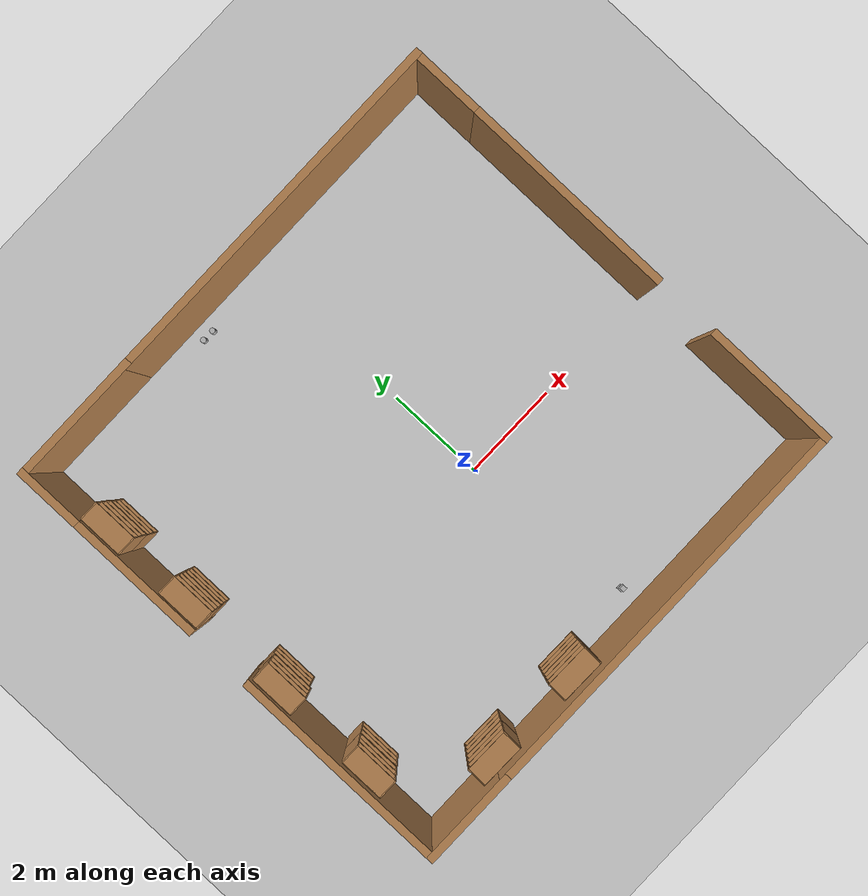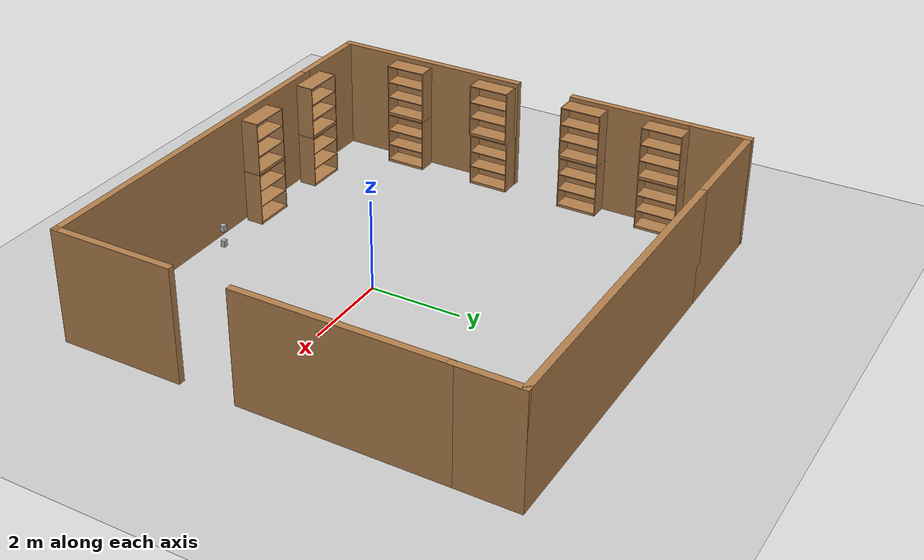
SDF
<sdf version="1.7">
 <world name="default">
  <model name="ground_plane">
   <static>1</static>
   <link name="link">
    <collision name="collision">
     <geometry><plane><normal>0 0 1</normal><size>100 100</size></plane></geometry>
     <surface><friction><ode><mu>100</mu><mu2>50</mu2></ode></friction></surface>
    </collision>
    <visual name="visual">
     <cast_shadows>0</cast_shadows>
     <geometry><plane><normal>0 0 1</normal><size>100 100</size></plane></geometry>
     <material>
      <script><uri>file://media/materials/scripts/gazebo.material</uri><name>Gazebo/Grey</name></script>
     </material>
    </visual>
   </link>
  </model>
  <model name="shopping_mart_box">
   <pose>-0.44063 0.87202 0 0 -0 0</pose>
   <link name="Wall_11">
    <collision name="Wall_11_Collision">
     <geometry><box><size>2 0.15 2.5</size></box></geometry>
     <pose>0 0 1.25 0 -0 0</pose>
    </collision>
    <visual name="Wall_11_Visual">
     <pose>0 0 1.25 0 -0 0</pose>
     <geometry><box><size>2 0.15 2.5</size></box></geometry>
     <material>
      <script><uri>file://media/materials/scripts/gazebo.material</uri><name>Gazebo/Wood</name></script>
      <ambient>1 1 1 1</ambient>
     </material>
    </visual>
    <pose>-4.05 -4.85 0 0 -0 3.14159</pose>
   </link>
   <link name="Wall_12">
    <collision name="Wall_12_Collision">
     <geometry><box><size>4.5 0.15 2.5</size></box></geometry>
     <pose>0 0 1.25 0 -0 0</pose>
    </collision>
    <visual name="Wall_12_Visual">
     <pose>0 0 1.25 0 -0 0</pose>
     <geometry><box><size>4.5 0.15 2.5</size></box></geometry>
     <material>
      <script><uri>file://media/materials/scripts/gazebo.material</uri><name>Gazebo/Wood</name></script>
      <ambient>1 1 1 1</ambient>
     </material>
    </visual>
    <pose>-4.975 -2.675 0 0 -0 1.5708</pose>
   </link>
   <link name="Wall_15">
    <collision name="Wall_15_Collision">
     <geometry><box><size>2.75 0.15 2.5</size></box></geometry>
     <pose>0 0 1.25 0 -0 0</pose>
    </collision>
    <visual name="Wall_15_Visual">
     <pose>0 0 1.25 0 -0 0</pose>
     <geometry><box><size>2.75 0.15 2.5</size></box></geometry>
     <material>
      <script><uri>file://media/materials/scripts/gazebo.material</uri><name>Gazebo/Wood</name></script>
      <ambient>1 1 1 1</ambient>
     </material>
    </visual>
    <pose>-4.975 2.2 0 0 0 -1.5708</pose>
   </link>
   <link name="Wall_17">
    <collision name="Wall_17_Collision">
     <geometry><box><size>1.5 0.15 2.5</size></box></geometry>
     <pose>0 0 1.25 0 -0 0</pose>
    </collision>
    <visual name="Wall_17_Visual">
     <pose>0 0 1.25 0 -0 0</pose>
     <geometry><box><size>1.5 0.15 2.5</size></box></geometry>
     <material>
      <script><uri>file://media/materials/scripts/gazebo.material</uri><name>Gazebo/Wood</name></script>
      <ambient>1 1 1 1</ambient>
     </material>
    </visual>
    <pose>-4.975 4.175 0 0 -0 1.5708</pose>
   </link>
   <link name="Wall_21">
    <collision name="Wall_21_Collision">
     <geometry><box><size>2.75 0.15 2.5</size></box></geometry>
     <pose>0 0 1.25 0 -0 0</pose>
    </collision>
    <visual name="Wall_21_Visual">
     <pose>0 0 1.25 0 -0 0</pose>
     <geometry><box><size>2.75 0.15 2.5</size></box></geometry>
     <material>
      <script><uri>file://media/materials/scripts/gazebo.material</uri><name>Gazebo/Wood</name></script>
      <ambient>1 1 1 1</ambient>
     </material>
    </visual>
    <pose>-3.675 4.85 0 0 -0 0</pose>
   </link>
   <link name="Wall_22">
    <collision name="Wall_22_Collision">
     <geometry><box><size>7.5 0.15 2.5</size></box></geometry>
     <pose>0 0 1.25 0 -0 0</pose>
    </collision>
    <visual name="Wall_22_Visual">
     <pose>0 0 1.25 0 -0 0</pose>
     <geometry><box><size>7.5 0.15 2.5</size></box></geometry>
     <material>
      <script><uri>file://media/materials/scripts/gazebo.material</uri><name>Gazebo/Wood</name></script>
      <ambient>1 1 1 1</ambient>
     </material>
    </visual>
    <pose>1.3 4.85 0 0 -0 0</pose>
   </link>
   <link name="Wall_23">
    <collision name="Wall_23_Collision">
     <geometry><box><size>1.5 0.15 2.5</size></box></geometry>
     <pose>0 0 1.25 0 -0 0</pose>
    </collision>
    <visual name="Wall_23_Visual">
     <pose>0 0 1.25 0 -0 0</pose>
     <geometry><box><size>1.5 0.15 2.5</size></box></geometry>
     <material>
      <script><uri>file://media/materials/scripts/gazebo.material</uri><name>Gazebo/Wood</name></script>
      <ambient>1 1 1 1</ambient>
     </material>
    </visual>
    <pose>4.975 4.175 0 0 0 -1.5708</pose>
   </link>
   <link name="Wall_29">
    <collision name="Wall_29_Collision">
     <geometry><box><size>4.5 0.15 2.5</size></box></geometry>
     <pose>0 0 1.25 0 -0 0</pose>
    </collision>
    <visual name="Wall_29_Visual">
     <pose>0 0 1.25 0 -0 0</pose>
     <geometry><box><size>4.5 0.15 2.5</size></box></geometry>
     <material>
      <script><uri>file://media/materials/scripts/gazebo.material</uri><name>Gazebo/Wood</name></script>
      <ambient>1 1 1 1</ambient>
     </material>
    </visual>
    <pose>4.975 1.325 0 0 0 -1.5708</pose>
   </link>
   <link name="Wall_31">
    <collision name="Wall_31_Collision">
     <geometry><box><size>2.75 0.15 2.5</size></box></geometry>
     <pose>0 0 1.25 0 -0 0</pose>
    </collision>
    <visual name="Wall_31_Visual">
     <pose>0 0 1.25 0 -0 0</pose>
     <geometry><box><size>2.75 0.15 2.5</size></box></geometry>
     <material>
      <script><uri>file://media/materials/scripts/gazebo.material</uri><name>Gazebo/Wood</name></script>
      <ambient>1 1 1 1</ambient>
     </material>
    </visual>
    <pose>4.975 -3.55 0 0 -0 1.5708</pose>
   </link>
   <link name="Wall_6">
    <collision name="Wall_6_Collision">
     <geometry><box><size>8.25 0.15 2.5</size></box></geometry>
     <pose>0 0 1.25 0 -0 0</pose>
    </collision>
    <visual name="Wall_6_Visual">
     <pose>0 0 1.25 0 -0 0</pose>
     <geometry><box><size>8.25 0.15 2.5</size></box></geometry>
     <material>
      <script><uri>file://media/materials/scripts/gazebo.material</uri><name>Gazebo/Wood</name></script>
      <ambient>1 1 1 1</ambient>
     </material>
    </visual>
    <pose>0.925 -4.85 0 0 -0 0</pose>
   </link>
   <static>1</static>
  </model>
  <model name="bookshelf_5_clone_2">
   <static>1</static>
   <link name="link">
    <inertial><mass>1</mass></inertial>
    <collision name="back">
     <pose>0 0.005 0.6 0 -0 0</pose>
     <geometry><box><size>0.9 0.01 1.2</size></box></geometry>
    </collision>
    <visual name="visual1">
     <pose>0 0.005 0.6 0 -0 0</pose>
     <geometry><box><size>0.9 0.01 1.2</size></box></geometry>
     <material>
      <script><uri>file://media/materials/scripts/gazebo.material</uri><name>Gazebo/Wood</name></script>
     </material>
    </visual>
    <collision name="left_side">
     <pose>0.45 -0.195 0.6 0 -0 0</pose>
     <geometry><box><size>0.02 0.4 1.2</size></box></geometry>
    </collision>
    <visual name="visual2">
     <pose>0.45 -0.195 0.6 0 -0 0</pose>
     <geometry><box><size>0.02 0.4 1.2</size></box></geometry>
     <material>
      <script><uri>file://media/materials/scripts/gazebo.material</uri><name>Gazebo/Wood</name></script>
     </material>
    </visual>
    <collision name="right_side">
     <pose>-0.45 -0.195 0.6 0 -0 0</pose>
     <geometry><box><size>0.02 0.4 1.2</size></box></geometry>
    </collision>
    <visual name="visual3">
     <pose>-0.45 -0.195 0.6 0 -0 0</pose>
     <geometry><box><size>0.02 0.4 1.2</size></box></geometry>
     <material>
      <script><uri>file://media/materials/scripts/gazebo.material</uri><name>Gazebo/Wood</name></script>
     </material>
    </visual>
    <collision name="bottom">
     <pose>0 -0.195 0.03 0 -0 0</pose>
     <geometry><box><size>0.88 0.4 0.06</size></box></geometry>
    </collision>
    <visual name="visual4">
     <pose>0 -0.195 0.03 0 -0 0</pose>
     <geometry><box><size>0.88 0.4 0.06</size></box></geometry>
     <material>
      <script><uri>file://media/materials/scripts/gazebo.material</uri><name>Gazebo/Wood</name></script>
     </material>
    </visual>
    <collision name="top">
     <pose>0 -0.195 1.19 0 -0 0</pose>
     <geometry><box><size>0.88 0.4 0.02</size></box></geometry>
    </collision>
    <visual name="visual5">
     <pose>0 -0.195 1.19 0 -0 0</pose>
     <geometry><box><size>0.88 0.4 0.02</size></box></geometry>
     <material>
      <script><uri>file://media/materials/scripts/gazebo.material</uri><name>Gazebo/Wood</name></script>
     </material>
    </visual>
    <collision name="low_shelf">
     <pose>0 -0.195 0.43 0 -0 0</pose>
     <geometry><box><size>0.88 0.4 0.02</size></box></geometry>
    </collision>
    <visual name="visual6">
     <pose>0 -0.195 0.43 0 -0 0</pose>
     <geometry><box><size>0.88 0.4 0.02</size></box></geometry>
     <material>
      <script><uri>file://media/materials/scripts/gazebo.material</uri><name>Gazebo/Wood</name></script>
     </material>
    </visual>
    <collision name="high_shelf">
     <pose>0 -0.195 0.8 0 -0 0</pose>
     <geometry><box><size>0.88 0.4 0.02</size></box></geometry>
    </collision>
    <visual name="visual7">
     <pose>0 -0.195 0.8 0 -0 0</pose>
     <geometry><box><size>0.88 0.4 0.02</size></box></geometry>
     <material>
      <script><uri>file://media/materials/scripts/gazebo.material</uri><name>Gazebo/Wood</name></script>
     </material>
    </visual>
   </link>
   <pose>-1.42311 -3.81825 0 0 -0 3.12955</pose>
  </model>
  <model name="bookshelf_5_clone_5">
   <static>1</static>
   <link name="link">
    <inertial><mass>1</mass></inertial>
    <collision name="back">
     <pose>0 0.005 0.6 0 -0 0</pose>
     <geometry><box><size>0.9 0.01 1.2</size></box></geometry>
    </collision>
    <visual name="visual1">
     <pose>0 0.005 0.6 0 -0 0</pose>
     <geometry><box><size>0.9 0.01 1.2</size></box></geometry>
     <material>
      <script><uri>file://media/materials/scripts/gazebo.material</uri><name>Gazebo/Wood</name></script>
     </material>
    </visual>
    <collision name="left_side">
     <pose>0.45 -0.195 0.6 0 -0 0</pose>
     <geometry><box><size>0.02 0.4 1.2</size></box></geometry>
    </collision>
    <visual name="visual2">
     <pose>0.45 -0.195 0.6 0 -0 0</pose>
     <geometry><box><size>0.02 0.4 1.2</size></box></geometry>
     <material>
      <script><uri>file://media/materials/scripts/gazebo.material</uri><name>Gazebo/Wood</name></script>
     </material>
    </visual>
    <collision name="right_side">
     <pose>-0.45 -0.195 0.6 0 -0 0</pose>
     <geometry><box><size>0.02 0.4 1.2</size></box></geometry>
    </collision>
    <visual name="visual3">
     <pose>-0.45 -0.195 0.6 0 -0 0</pose>
     <geometry><box><size>0.02 0.4 1.2</size></box></geometry>
     <material>
      <script><uri>file://media/materials/scripts/gazebo.material</uri><name>Gazebo/Wood</name></script>
     </material>
    </visual>
    <collision name="bottom">
     <pose>0 -0.195 0.03 0 -0 0</pose>
     <geometry><box><size>0.88 0.4 0.06</size></box></geometry>
    </collision>
    <visual name="visual4">
     <pose>0 -0.195 0.03 0 -0 0</pose>
     <geometry><box><size>0.88 0.4 0.06</size></box></geometry>
     <material>
      <script><uri>file://media/materials/scripts/gazebo.material</uri><name>Gazebo/Wood</name></script>
     </material>
    </visual>
    <collision name="top">
     <pose>0 -0.195 1.19 0 -0 0</pose>
     <geometry><box><size>0.88 0.4 0.02</size></box></geometry>
    </collision>
    <visual name="visual5">
     <pose>0 -0.195 1.19 0 -0 0</pose>
     <geometry><box><size>0.88 0.4 0.02</size></box></geometry>
     <material>
      <script><uri>file://media/materials/scripts/gazebo.material</uri><name>Gazebo/Wood</name></script>
     </material>
    </visual>
    <collision name="low_shelf">
     <pose>0 -0.195 0.43 0 -0 0</pose>
     <geometry><box><size>0.88 0.4 0.02</size></box></geometry>
    </collision>
    <visual name="visual6">
     <pose>0 -0.195 0.43 0 -0 0</pose>
     <geometry><box><size>0.88 0.4 0.02</size></box></geometry>
     <material>
      <script><uri>file://media/materials/scripts/gazebo.material</uri><name>Gazebo/Wood</name></script>
     </material>
    </visual>
    <collision name="high_shelf">
     <pose>0 -0.195 0.8 0 -0 0</pose>
     <geometry><box><size>0.88 0.4 0.02</size></box></geometry>
    </collision>
    <visual name="visual7">
     <pose>0 -0.195 0.8 0 -0 0</pose>
     <geometry><box><size>0.88 0.4 0.02</size></box></geometry>
     <material>
      <script><uri>file://media/materials/scripts/gazebo.material</uri><name>Gazebo/Wood</name></script>
     </material>
    </visual>
   </link>
   <pose>-3.44979 -3.80253 0 0 -0 3.12955</pose>
  </model>
  <model name="bookshelf_5_clone_clone_0">
   <static>1</static>
   <link name="link">
    <inertial><mass>1</mass></inertial>
    <collision name="back">
     <pose>0 0.005 0.6 0 -0 0</pose>
     <geometry><box><size>0.9 0.01 1.2</size></box></geometry>
    </collision>
    <visual name="visual1">
     <pose>0 0.005 0.6 0 -0 0</pose>
     <geometry><box><size>0.9 0.01 1.2</size></box></geometry>
     <material>
      <script><uri>file://media/materials/scripts/gazebo.material</uri><name>Gazebo/Wood</name></script>
     </material>
    </visual>
    <collision name="left_side">
     <pose>0.45 -0.195 0.6 0 -0 0</pose>
     <geometry><box><size>0.02 0.4 1.2</size></box></geometry>
    </collision>
    <visual name="visual2">
     <pose>0.45 -0.195 0.6 0 -0 0</pose>
     <geometry><box><size>0.02 0.4 1.2</size></box></geometry>
     <material>
      <script><uri>file://media/materials/scripts/gazebo.material</uri><name>Gazebo/Wood</name></script>
     </material>
    </visual>
    <collision name="right_side">
     <pose>-0.45 -0.195 0.6 0 -0 0</pose>
     <geometry><box><size>0.02 0.4 1.2</size></box></geometry>
    </collision>
    <visual name="visual3">
     <pose>-0.45 -0.195 0.6 0 -0 0</pose>
     <geometry><box><size>0.02 0.4 1.2</size></box></geometry>
     <material>
      <script><uri>file://media/materials/scripts/gazebo.material</uri><name>Gazebo/Wood</name></script>
     </material>
    </visual>
    <collision name="bottom">
     <pose>0 -0.195 0.03 0 -0 0</pose>
     <geometry><box><size>0.88 0.4 0.06</size></box></geometry>
    </collision>
    <visual name="visual4">
     <pose>0 -0.195 0.03 0 -0 0</pose>
     <geometry><box><size>0.88 0.4 0.06</size></box></geometry>
     <material>
      <script><uri>file://media/materials/scripts/gazebo.material</uri><name>Gazebo/Wood</name></script>
     </material>
    </visual>
    <collision name="top">
     <pose>0 -0.195 1.19 0 -0 0</pose>
     <geometry><box><size>0.88 0.4 0.02</size></box></geometry>
    </collision>
    <visual name="visual5">
     <pose>0 -0.195 1.19 0 -0 0</pose>
     <geometry><box><size>0.88 0.4 0.02</size></box></geometry>
     <material>
      <script><uri>file://media/materials/scripts/gazebo.material</uri><name>Gazebo/Wood</name></script>
     </material>
    </visual>
    <collision name="low_shelf">
     <pose>0 -0.195 0.43 0 -0 0</pose>
     <geometry><box><size>0.88 0.4 0.02</size></box></geometry>
    </collision>
    <visual name="visual6">
     <pose>0 -0.195 0.43 0 -0 0</pose>
     <geometry><box><size>0.88 0.4 0.02</size></box></geometry>
     <material>
      <script><uri>file://media/materials/scripts/gazebo.material</uri><name>Gazebo/Wood</name></script>
     </material>
    </visual>
    <collision name="high_shelf">
     <pose>0 -0.195 0.8 0 -0 0</pose>
     <geometry><box><size>0.88 0.4 0.02</size></box></geometry>
    </collision>
    <visual name="visual7">
     <pose>0 -0.195 0.8 0 -0 0</pose>
     <geometry><box><size>0.88 0.4 0.02</size></box></geometry>
     <material>
      <script><uri>file://media/materials/scripts/gazebo.material</uri><name>Gazebo/Wood</name></script>
     </material>
    </visual>
   </link>
   <pose>-1.41694 -3.81004 1.21139 0 -0 3.12955</pose>
  </model>
  <model name="bookshelf_5_clone_clone_1">
   <static>1</static>
   <link name="link">
    <inertial><mass>1</mass></inertial>
    <collision name="back">
     <pose>0 0.005 0.6 0 -0 0</pose>
     <geometry><box><size>0.9 0.01 1.2</size></box></geometry>
    </collision>
    <visual name="visual1">
     <pose>0 0.005 0.6 0 -0 0</pose>
     <geometry><box><size>0.9 0.01 1.2</size></box></geometry>
     <material>
      <script><uri>file://media/materials/scripts/gazebo.material</uri><name>Gazebo/Wood</name></script>
     </material>
    </visual>
    <collision name="left_side">
     <pose>0.45 -0.195 0.6 0 -0 0</pose>
     <geometry><box><size>0.02 0.4 1.2</size></box></geometry>
    </collision>
    <visual name="visual2">
     <pose>0.45 -0.195 0.6 0 -0 0</pose>
     <geometry><box><size>0.02 0.4 1.2</size></box></geometry>
     <material>
      <script><uri>file://media/materials/scripts/gazebo.material</uri><name>Gazebo/Wood</name></script>
     </material>
    </visual>
    <collision name="right_side">
     <pose>-0.45 -0.195 0.6 0 -0 0</pose>
     <geometry><box><size>0.02 0.4 1.2</size></box></geometry>
    </collision>
    <visual name="visual3">
     <pose>-0.45 -0.195 0.6 0 -0 0</pose>
     <geometry><box><size>0.02 0.4 1.2</size></box></geometry>
     <material>
      <script><uri>file://media/materials/scripts/gazebo.material</uri><name>Gazebo/Wood</name></script>
     </material>
    </visual>
    <collision name="bottom">
     <pose>0 -0.195 0.03 0 -0 0</pose>
     <geometry><box><size>0.88 0.4 0.06</size></box></geometry>
    </collision>
    <visual name="visual4">
     <pose>0 -0.195 0.03 0 -0 0</pose>
     <geometry><box><size>0.88 0.4 0.06</size></box></geometry>
     <material>
      <script><uri>file://media/materials/scripts/gazebo.material</uri><name>Gazebo/Wood</name></script>
     </material>
    </visual>
    <collision name="top">
     <pose>0 -0.195 1.19 0 -0 0</pose>
     <geometry><box><size>0.88 0.4 0.02</size></box></geometry>
    </collision>
    <visual name="visual5">
     <pose>0 -0.195 1.19 0 -0 0</pose>
     <geometry><box><size>0.88 0.4 0.02</size></box></geometry>
     <material>
      <script><uri>file://media/materials/scripts/gazebo.material</uri><name>Gazebo/Wood</name></script>
     </material>
    </visual>
    <collision name="low_shelf">
     <pose>0 -0.195 0.43 0 -0 0</pose>
     <geometry><box><size>0.88 0.4 0.02</size></box></geometry>
    </collision>
    <visual name="visual6">
     <pose>0 -0.195 0.43 0 -0 0</pose>
     <geometry><box><size>0.88 0.4 0.02</size></box></geometry>
     <material>
      <script><uri>file://media/materials/scripts/gazebo.material</uri><name>Gazebo/Wood</name></script>
     </material>
    </visual>
    <collision name="high_shelf">
     <pose>0 -0.195 0.8 0 -0 0</pose>
     <geometry><box><size>0.88 0.4 0.02</size></box></geometry>
    </collision>
    <visual name="visual7">
     <pose>0 -0.195 0.8 0 -0 0</pose>
     <geometry><box><size>0.88 0.4 0.02</size></box></geometry>
     <material>
      <script><uri>file://media/materials/scripts/gazebo.material</uri><name>Gazebo/Wood</name></script>
     </material>
    </visual>
   </link>
   <pose>-3.44383 -3.79926 1.21139 0 -0 3.12955</pose>
  </model>
  <model name="bookshelf_0_clone_0">
   <static>1</static>
   <link name="link">
    <inertial><mass>1</mass></inertial>
    <collision name="back">
     <pose>0 0.005 0.6 0 -0 0</pose>
     <geometry><box><size>0.9 0.01 1.2</size></box></geometry>
    </collision>
    <visual name="visual1">
     <pose>0 0.005 0.6 0 -0 0</pose>
     <geometry><box><size>0.9 0.01 1.2</size></box></geometry>
     <material>
      <script><uri>file://media/materials/scripts/gazebo.material</uri><name>Gazebo/Wood</name></script>
     </material>
    </visual>
    <collision name="left_side">
     <pose>0.45 -0.195 0.6 0 -0 0</pose>
     <geometry><box><size>0.02 0.4 1.2</size></box></geometry>
    </collision>
    <visual name="visual2">
     <pose>0.45 -0.195 0.6 0 -0 0</pose>
     <geometry><box><size>0.02 0.4 1.2</size></box></geometry>
     <material>
      <script><uri>file://media/materials/scripts/gazebo.material</uri><name>Gazebo/Wood</name></script>
     </material>
    </visual>
    <collision name="right_side">
     <pose>-0.45 -0.195 0.6 0 -0 0</pose>
     <geometry><box><size>0.02 0.4 1.2</size></box></geometry>
    </collision>
    <visual name="visual3">
     <pose>-0.45 -0.195 0.6 0 -0 0</pose>
     <geometry><box><size>0.02 0.4 1.2</size></box></geometry>
     <material>
      <script><uri>file://media/materials/scripts/gazebo.material</uri><name>Gazebo/Wood</name></script>
     </material>
    </visual>
    <collision name="bottom">
     <pose>0 -0.195 0.03 0 -0 0</pose>
     <geometry><box><size>0.88 0.4 0.06</size></box></geometry>
    </collision>
    <visual name="visual4">
     <pose>0 -0.195 0.03 0 -0 0</pose>
     <geometry><box><size>0.88 0.4 0.06</size></box></geometry>
     <material>
      <script><uri>file://media/materials/scripts/gazebo.material</uri><name>Gazebo/Wood</name></script>
     </material>
    </visual>
    <collision name="top">
     <pose>0 -0.195 1.19 0 -0 0</pose>
     <geometry><box><size>0.88 0.4 0.02</size></box></geometry>
    </collision>
    <visual name="visual5">
     <pose>0 -0.195 1.19 0 -0 0</pose>
     <geometry><box><size>0.88 0.4 0.02</size></box></geometry>
     <material>
      <script><uri>file://media/materials/scripts/gazebo.material</uri><name>Gazebo/Wood</name></script>
     </material>
    </visual>
    <collision name="low_shelf">
     <pose>0 -0.195 0.43 0 -0 0</pose>
     <geometry><box><size>0.88 0.4 0.02</size></box></geometry>
    </collision>
    <visual name="visual6">
     <pose>0 -0.195 0.43 0 -0 0</pose>
     <geometry><box><size>0.88 0.4 0.02</size></box></geometry>
     <material>
      <script><uri>file://media/materials/scripts/gazebo.material</uri><name>Gazebo/Wood</name></script>
     </material>
    </visual>
    <collision name="high_shelf">
     <pose>0 -0.195 0.8 0 -0 0</pose>
     <geometry><box><size>0.88 0.4 0.02</size></box></geometry>
    </collision>
    <visual name="visual7">
     <pose>0 -0.195 0.8 0 -0 0</pose>
     <geometry><box><size>0.88 0.4 0.02</size></box></geometry>
     <material>
      <script><uri>file://media/materials/scripts/gazebo.material</uri><name>Gazebo/Wood</name></script>
     </material>
    </visual>
   </link>
   <pose>-5.30935 -0.025093 0 0 -0 1.5697</pose>
  </model>
  <model name="bookshelf_0_clone_0_clone">
   <static>1</static>
   <link name="link">
    <inertial><mass>1</mass></inertial>
    <collision name="back">
     <pose>0 0.005 0.6 0 -0 0</pose>
     <geometry><box><size>0.9 0.01 1.2</size></box></geometry>
    </collision>
    <visual name="visual1">
     <pose>0 0.005 0.6 0 -0 0</pose>
     <geometry><box><size>0.9 0.01 1.2</size></box></geometry>
     <material>
      <script><uri>file://media/materials/scripts/gazebo.material</uri><name>Gazebo/Wood</name></script>
     </material>
    </visual>
    <collision name="left_side">
     <pose>0.45 -0.195 0.6 0 -0 0</pose>
     <geometry><box><size>0.02 0.4 1.2</size></box></geometry>
    </collision>
    <visual name="visual2">
     <pose>0.45 -0.195 0.6 0 -0 0</pose>
     <geometry><box><size>0.02 0.4 1.2</size></box></geometry>
     <material>
      <script><uri>file://media/materials/scripts/gazebo.material</uri><name>Gazebo/Wood</name></script>
     </material>
    </visual>
    <collision name="right_side">
     <pose>-0.45 -0.195 0.6 0 -0 0</pose>
     <geometry><box><size>0.02 0.4 1.2</size></box></geometry>
    </collision>
    <visual name="visual3">
     <pose>-0.45 -0.195 0.6 0 -0 0</pose>
     <geometry><box><size>0.02 0.4 1.2</size></box></geometry>
     <material>
      <script><uri>file://media/materials/scripts/gazebo.material</uri><name>Gazebo/Wood</name></script>
     </material>
    </visual>
    <collision name="bottom">
     <pose>0 -0.195 0.03 0 -0 0</pose>
     <geometry><box><size>0.88 0.4 0.06</size></box></geometry>
    </collision>
    <visual name="visual4">
     <pose>0 -0.195 0.03 0 -0 0</pose>
     <geometry><box><size>0.88 0.4 0.06</size></box></geometry>
     <material>
      <script><uri>file://media/materials/scripts/gazebo.material</uri><name>Gazebo/Wood</name></script>
     </material>
    </visual>
    <collision name="top">
     <pose>0 -0.195 1.19 0 -0 0</pose>
     <geometry><box><size>0.88 0.4 0.02</size></box></geometry>
    </collision>
    <visual name="visual5">
     <pose>0 -0.195 1.19 0 -0 0</pose>
     <geometry><box><size>0.88 0.4 0.02</size></box></geometry>
     <material>
      <script><uri>file://media/materials/scripts/gazebo.material</uri><name>Gazebo/Wood</name></script>
     </material>
    </visual>
    <collision name="low_shelf">
     <pose>0 -0.195 0.43 0 -0 0</pose>
     <geometry><box><size>0.88 0.4 0.02</size></box></geometry>
    </collision>
    <visual name="visual6">
     <pose>0 -0.195 0.43 0 -0 0</pose>
     <geometry><box><size>0.88 0.4 0.02</size></box></geometry>
     <material>
      <script><uri>file://media/materials/scripts/gazebo.material</uri><name>Gazebo/Wood</name></script>
     </material>
    </visual>
    <collision name="high_shelf">
     <pose>0 -0.195 0.8 0 -0 0</pose>
     <geometry><box><size>0.88 0.4 0.02</size></box></geometry>
    </collision>
    <visual name="visual7">
     <pose>0 -0.195 0.8 0 -0 0</pose>
     <geometry><box><size>0.88 0.4 0.02</size></box></geometry>
     <material>
      <script><uri>file://media/materials/scripts/gazebo.material</uri><name>Gazebo/Wood</name></script>
     </material>
    </visual>
   </link>
   <pose>-5.33454 2.15943 0 0 -0 1.5697</pose>
  </model>
  <model name="bookshelf_0_clone_0_clone_0">
   <static>1</static>
   <link name="link">
    <inertial><mass>1</mass></inertial>
    <collision name="back">
     <pose>0 0.005 0.6 0 -0 0</pose>
     <geometry><box><size>0.9 0.01 1.2</size></box></geometry>
    </collision>
    <visual name="visual1">
     <pose>0 0.005 0.6 0 -0 0</pose>
     <geometry><box><size>0.9 0.01 1.2</size></box></geometry>
     <material>
      <script><uri>file://media/materials/scripts/gazebo.material</uri><name>Gazebo/Wood</name></script>
     </material>
    </visual>
    <collision name="left_side">
     <pose>0.45 -0.195 0.6 0 -0 0</pose>
     <geometry><box><size>0.02 0.4 1.2</size></box></geometry>
    </collision>
    <visual name="visual2">
     <pose>0.45 -0.195 0.6 0 -0 0</pose>
     <geometry><box><size>0.02 0.4 1.2</size></box></geometry>
     <material>
      <script><uri>file://media/materials/scripts/gazebo.material</uri><name>Gazebo/Wood</name></script>
     </material>
    </visual>
    <collision name="right_side">
     <pose>-0.45 -0.195 0.6 0 -0 0</pose>
     <geometry><box><size>0.02 0.4 1.2</size></box></geometry>
    </collision>
    <visual name="visual3">
     <pose>-0.45 -0.195 0.6 0 -0 0</pose>
     <geometry><box><size>0.02 0.4 1.2</size></box></geometry>
     <material>
      <script><uri>file://media/materials/scripts/gazebo.material</uri><name>Gazebo/Wood</name></script>
     </material>
    </visual>
    <collision name="bottom">
     <pose>0 -0.195 0.03 0 -0 0</pose>
     <geometry><box><size>0.88 0.4 0.06</size></box></geometry>
    </collision>
    <visual name="visual4">
     <pose>0 -0.195 0.03 0 -0 0</pose>
     <geometry><box><size>0.88 0.4 0.06</size></box></geometry>
     <material>
      <script><uri>file://media/materials/scripts/gazebo.material</uri><name>Gazebo/Wood</name></script>
     </material>
    </visual>
    <collision name="top">
     <pose>0 -0.195 1.19 0 -0 0</pose>
     <geometry><box><size>0.88 0.4 0.02</size></box></geometry>
    </collision>
    <visual name="visual5">
     <pose>0 -0.195 1.19 0 -0 0</pose>
     <geometry><box><size>0.88 0.4 0.02</size></box></geometry>
     <material>
      <script><uri>file://media/materials/scripts/gazebo.material</uri><name>Gazebo/Wood</name></script>
     </material>
    </visual>
    <collision name="low_shelf">
     <pose>0 -0.195 0.43 0 -0 0</pose>
     <geometry><box><size>0.88 0.4 0.02</size></box></geometry>
    </collision>
    <visual name="visual6">
     <pose>0 -0.195 0.43 0 -0 0</pose>
     <geometry><box><size>0.88 0.4 0.02</size></box></geometry>
     <material>
      <script><uri>file://media/materials/scripts/gazebo.material</uri><name>Gazebo/Wood</name></script>
     </material>
    </visual>
    <collision name="high_shelf">
     <pose>0 -0.195 0.8 0 -0 0</pose>
     <geometry><box><size>0.88 0.4 0.02</size></box></geometry>
    </collision>
    <visual name="visual7">
     <pose>0 -0.195 0.8 0 -0 0</pose>
     <geometry><box><size>0.88 0.4 0.02</size></box></geometry>
     <material>
      <script><uri>file://media/materials/scripts/gazebo.material</uri><name>Gazebo/Wood</name></script>
     </material>
    </visual>
   </link>
   <pose>-5.32765 4.01778 0 0 -0 1.5697</pose>
  </model>
  <model name="bookshelf_0_clone_0_clone_1_clone_0">
   <static>1</static>
   <link name="link">
    <inertial><mass>1</mass></inertial>
    <collision name="back">
     <pose>0 0.005 0.6 0 -0 0</pose>
     <geometry><box><size>0.9 0.01 1.2</size></box></geometry>
    </collision>
    <visual name="visual1">
     <pose>0 0.005 0.6 0 -0 0</pose>
     <geometry><box><size>0.9 0.01 1.2</size></box></geometry>
     <material>
      <script><uri>file://media/materials/scripts/gazebo.material</uri><name>Gazebo/Wood</name></script>
     </material>
    </visual>
    <collision name="left_side">
     <pose>0.45 -0.195 0.6 0 -0 0</pose>
     <geometry><box><size>0.02 0.4 1.2</size></box></geometry>
    </collision>
    <visual name="visual2">
     <pose>0.45 -0.195 0.6 0 -0 0</pose>
     <geometry><box><size>0.02 0.4 1.2</size></box></geometry>
     <material>
      <script><uri>file://media/materials/scripts/gazebo.material</uri><name>Gazebo/Wood</name></script>
     </material>
    </visual>
    <collision name="right_side">
     <pose>-0.45 -0.195 0.6 0 -0 0</pose>
     <geometry><box><size>0.02 0.4 1.2</size></box></geometry>
    </collision>
    <visual name="visual3">
     <pose>-0.45 -0.195 0.6 0 -0 0</pose>
     <geometry><box><size>0.02 0.4 1.2</size></box></geometry>
     <material>
      <script><uri>file://media/materials/scripts/gazebo.material</uri><name>Gazebo/Wood</name></script>
     </material>
    </visual>
    <collision name="bottom">
     <pose>0 -0.195 0.03 0 -0 0</pose>
     <geometry><box><size>0.88 0.4 0.06</size></box></geometry>
    </collision>
    <visual name="visual4">
     <pose>0 -0.195 0.03 0 -0 0</pose>
     <geometry><box><size>0.88 0.4 0.06</size></box></geometry>
     <material>
      <script><uri>file://media/materials/scripts/gazebo.material</uri><name>Gazebo/Wood</name></script>
     </material>
    </visual>
    <collision name="top">
     <pose>0 -0.195 1.19 0 -0 0</pose>
     <geometry><box><size>0.88 0.4 0.02</size></box></geometry>
    </collision>
    <visual name="visual5">
     <pose>0 -0.195 1.19 0 -0 0</pose>
     <geometry><box><size>0.88 0.4 0.02</size></box></geometry>
     <material>
      <script><uri>file://media/materials/scripts/gazebo.material</uri><name>Gazebo/Wood</name></script>
     </material>
    </visual>
    <collision name="low_shelf">
     <pose>0 -0.195 0.43 0 -0 0</pose>
     <geometry><box><size>0.88 0.4 0.02</size></box></geometry>
    </collision>
    <visual name="visual6">
     <pose>0 -0.195 0.43 0 -0 0</pose>
     <geometry><box><size>0.88 0.4 0.02</size></box></geometry>
     <material>
      <script><uri>file://media/materials/scripts/gazebo.material</uri><name>Gazebo/Wood</name></script>
     </material>
    </visual>
    <collision name="high_shelf">
     <pose>0 -0.195 0.8 0 -0 0</pose>
     <geometry><box><size>0.88 0.4 0.02</size></box></geometry>
    </collision>
    <visual name="visual7">
     <pose>0 -0.195 0.8 0 -0 0</pose>
     <geometry><box><size>0.88 0.4 0.02</size></box></geometry>
     <material>
      <script><uri>file://media/materials/scripts/gazebo.material</uri><name>Gazebo/Wood</name></script>
     </material>
    </visual>
   </link>
   <pose>-5.32334 2.15341 1.21067 0 -0 1.5697</pose>
  </model>
  <model name="bookshelf_0_clone_0_clone_1_clone_1">
   <static>1</static>
   <link name="link">
    <inertial><mass>1</mass></inertial>
    <collision name="back">
     <pose>0 0.005 0.6 0 -0 0</pose>
     <geometry><box><size>0.9 0.01 1.2</size></box></geometry>
    </collision>
    <visual name="visual1">
     <pose>0 0.005 0.6 0 -0 0</pose>
     <geometry><box><size>0.9 0.01 1.2</size></box></geometry>
     <material>
      <script><uri>file://media/materials/scripts/gazebo.material</uri><name>Gazebo/Wood</name></script>
     </material>
    </visual>
    <collision name="left_side">
     <pose>0.45 -0.195 0.6 0 -0 0</pose>
     <geometry><box><size>0.02 0.4 1.2</size></box></geometry>
    </collision>
    <visual name="visual2">
     <pose>0.45 -0.195 0.6 0 -0 0</pose>
     <geometry><box><size>0.02 0.4 1.2</size></box></geometry>
     <material>
      <script><uri>file://media/materials/scripts/gazebo.material</uri><name>Gazebo/Wood</name></script>
     </material>
    </visual>
    <collision name="right_side">
     <pose>-0.45 -0.195 0.6 0 -0 0</pose>
     <geometry><box><size>0.02 0.4 1.2</size></box></geometry>
    </collision>
    <visual name="visual3">
     <pose>-0.45 -0.195 0.6 0 -0 0</pose>
     <geometry><box><size>0.02 0.4 1.2</size></box></geometry>
     <material>
      <script><uri>file://media/materials/scripts/gazebo.material</uri><name>Gazebo/Wood</name></script>
     </material>
    </visual>
    <collision name="bottom">
     <pose>0 -0.195 0.03 0 -0 0</pose>
     <geometry><box><size>0.88 0.4 0.06</size></box></geometry>
    </collision>
    <visual name="visual4">
     <pose>0 -0.195 0.03 0 -0 0</pose>
     <geometry><box><size>0.88 0.4 0.06</size></box></geometry>
     <material>
      <script><uri>file://media/materials/scripts/gazebo.material</uri><name>Gazebo/Wood</name></script>
     </material>
    </visual>
    <collision name="top">
     <pose>0 -0.195 1.19 0 -0 0</pose>
     <geometry><box><size>0.88 0.4 0.02</size></box></geometry>
    </collision>
    <visual name="visual5">
     <pose>0 -0.195 1.19 0 -0 0</pose>
     <geometry><box><size>0.88 0.4 0.02</size></box></geometry>
     <material>
      <script><uri>file://media/materials/scripts/gazebo.material</uri><name>Gazebo/Wood</name></script>
     </material>
    </visual>
    <collision name="low_shelf">
     <pose>0 -0.195 0.43 0 -0 0</pose>
     <geometry><box><size>0.88 0.4 0.02</size></box></geometry>
    </collision>
    <visual name="visual6">
     <pose>0 -0.195 0.43 0 -0 0</pose>
     <geometry><box><size>0.88 0.4 0.02</size></box></geometry>
     <material>
      <script><uri>file://media/materials/scripts/gazebo.material</uri><name>Gazebo/Wood</name></script>
     </material>
    </visual>
    <collision name="high_shelf">
     <pose>0 -0.195 0.8 0 -0 0</pose>
     <geometry><box><size>0.88 0.4 0.02</size></box></geometry>
    </collision>
    <visual name="visual7">
     <pose>0 -0.195 0.8 0 -0 0</pose>
     <geometry><box><size>0.88 0.4 0.02</size></box></geometry>
     <material>
      <script><uri>file://media/materials/scripts/gazebo.material</uri><name>Gazebo/Wood</name></script>
     </material>
    </visual>
   </link>
   <pose>-5.31196 4.0164 1.21067 0 -0 1.5697</pose>
  </model>
  <model name="bookshelf_0_clone_0_clone_1">
   <static>1</static>
   <link name="link">
    <inertial><mass>1</mass></inertial>
    <collision name="back">
     <pose>0 0.005 0.6 0 -0 0</pose>
     <geometry><box><size>0.9 0.01 1.2</size></box></geometry>
    </collision>
    <visual name="visual1">
     <pose>0 0.005 0.6 0 -0 0</pose>
     <geometry><box><size>0.9 0.01 1.2</size></box></geometry>
     <material>
      <script><uri>file://media/materials/scripts/gazebo.material</uri><name>Gazebo/Wood</name></script>
     </material>
    </visual>
    <collision name="left_side">
     <pose>0.45 -0.195 0.6 0 -0 0</pose>
     <geometry><box><size>0.02 0.4 1.2</size></box></geometry>
    </collision>
    <visual name="visual2">
     <pose>0.45 -0.195 0.6 0 -0 0</pose>
     <geometry><box><size>0.02 0.4 1.2</size></box></geometry>
     <material>
      <script><uri>file://media/materials/scripts/gazebo.material</uri><name>Gazebo/Wood</name></script>
     </material>
    </visual>
    <collision name="right_side">
     <pose>-0.45 -0.195 0.6 0 -0 0</pose>
     <geometry><box><size>0.02 0.4 1.2</size></box></geometry>
    </collision>
    <visual name="visual3">
     <pose>-0.45 -0.195 0.6 0 -0 0</pose>
     <geometry><box><size>0.02 0.4 1.2</size></box></geometry>
     <material>
      <script><uri>file://media/materials/scripts/gazebo.material</uri><name>Gazebo/Wood</name></script>
     </material>
    </visual>
    <collision name="bottom">
     <pose>0 -0.195 0.03 0 -0 0</pose>
     <geometry><box><size>0.88 0.4 0.06</size></box></geometry>
    </collision>
    <visual name="visual4">
     <pose>0 -0.195 0.03 0 -0 0</pose>
     <geometry><box><size>0.88 0.4 0.06</size></box></geometry>
     <material>
      <script><uri>file://media/materials/scripts/gazebo.material</uri><name>Gazebo/Wood</name></script>
     </material>
    </visual>
    <collision name="top">
     <pose>0 -0.195 1.19 0 -0 0</pose>
     <geometry><box><size>0.88 0.4 0.02</size></box></geometry>
    </collision>
    <visual name="visual5">
     <pose>0 -0.195 1.19 0 -0 0</pose>
     <geometry><box><size>0.88 0.4 0.02</size></box></geometry>
     <material>
      <script><uri>file://media/materials/scripts/gazebo.material</uri><name>Gazebo/Wood</name></script>
     </material>
    </visual>
    <collision name="low_shelf">
     <pose>0 -0.195 0.43 0 -0 0</pose>
     <geometry><box><size>0.88 0.4 0.02</size></box></geometry>
    </collision>
    <visual name="visual6">
     <pose>0 -0.195 0.43 0 -0 0</pose>
     <geometry><box><size>0.88 0.4 0.02</size></box></geometry>
     <material>
      <script><uri>file://media/materials/scripts/gazebo.material</uri><name>Gazebo/Wood</name></script>
     </material>
    </visual>
    <collision name="high_shelf">
     <pose>0 -0.195 0.8 0 -0 0</pose>
     <geometry><box><size>0.88 0.4 0.02</size></box></geometry>
    </collision>
    <visual name="visual7">
     <pose>0 -0.195 0.8 0 -0 0</pose>
     <geometry><box><size>0.88 0.4 0.02</size></box></geometry>
     <material>
      <script><uri>file://media/materials/scripts/gazebo.material</uri><name>Gazebo/Wood</name></script>
     </material>
    </visual>
   </link>
   <pose>-5.28921 -2.17241 0 0 -0 1.5697</pose>
  </model>
  <model name="bookshelf_0_clone_0_clone_1_clone_0_clone">
   <static>1</static>
   <link name="link">
    <inertial><mass>1</mass></inertial>
    <collision name="back">
     <pose>0 0.005 0.6 0 -0 0</pose>
     <geometry><box><size>0.9 0.01 1.2</size></box></geometry>
    </collision>
    <visual name="visual1">
     <pose>0 0.005 0.6 0 -0 0</pose>
     <geometry><box><size>0.9 0.01 1.2</size></box></geometry>
     <material>
      <script><uri>file://media/materials/scripts/gazebo.material</uri><name>Gazebo/Wood</name></script>
     </material>
    </visual>
    <collision name="left_side">
     <pose>0.45 -0.195 0.6 0 -0 0</pose>
     <geometry><box><size>0.02 0.4 1.2</size></box></geometry>
    </collision>
    <visual name="visual2">
     <pose>0.45 -0.195 0.6 0 -0 0</pose>
     <geometry><box><size>0.02 0.4 1.2</size></box></geometry>
     <material>
      <script><uri>file://media/materials/scripts/gazebo.material</uri><name>Gazebo/Wood</name></script>
     </material>
    </visual>
    <collision name="right_side">
     <pose>-0.45 -0.195 0.6 0 -0 0</pose>
     <geometry><box><size>0.02 0.4 1.2</size></box></geometry>
    </collision>
    <visual name="visual3">
     <pose>-0.45 -0.195 0.6 0 -0 0</pose>
     <geometry><box><size>0.02 0.4 1.2</size></box></geometry>
     <material>
      <script><uri>file://media/materials/scripts/gazebo.material</uri><name>Gazebo/Wood</name></script>
     </material>
    </visual>
    <collision name="bottom">
     <pose>0 -0.195 0.03 0 -0 0</pose>
     <geometry><box><size>0.88 0.4 0.06</size></box></geometry>
    </collision>
    <visual name="visual4">
     <pose>0 -0.195 0.03 0 -0 0</pose>
     <geometry><box><size>0.88 0.4 0.06</size></box></geometry>
     <material>
      <script><uri>file://media/materials/scripts/gazebo.material</uri><name>Gazebo/Wood</name></script>
     </material>
    </visual>
    <collision name="top">
     <pose>0 -0.195 1.19 0 -0 0</pose>
     <geometry><box><size>0.88 0.4 0.02</size></box></geometry>
    </collision>
    <visual name="visual5">
     <pose>0 -0.195 1.19 0 -0 0</pose>
     <geometry><box><size>0.88 0.4 0.02</size></box></geometry>
     <material>
      <script><uri>file://media/materials/scripts/gazebo.material</uri><name>Gazebo/Wood</name></script>
     </material>
    </visual>
    <collision name="low_shelf">
     <pose>0 -0.195 0.43 0 -0 0</pose>
     <geometry><box><size>0.88 0.4 0.02</size></box></geometry>
    </collision>
    <visual name="visual6">
     <pose>0 -0.195 0.43 0 -0 0</pose>
     <geometry><box><size>0.88 0.4 0.02</size></box></geometry>
     <material>
      <script><uri>file://media/materials/scripts/gazebo.material</uri><name>Gazebo/Wood</name></script>
     </material>
    </visual>
    <collision name="high_shelf">
     <pose>0 -0.195 0.8 0 -0 0</pose>
     <geometry><box><size>0.88 0.4 0.02</size></box></geometry>
    </collision>
    <visual name="visual7">
     <pose>0 -0.195 0.8 0 -0 0</pose>
     <geometry><box><size>0.88 0.4 0.02</size></box></geometry>
     <material>
      <script><uri>file://media/materials/scripts/gazebo.material</uri><name>Gazebo/Wood</name></script>
     </material>
    </visual>
   </link>
   <pose>-5.30537 -0.057137 1.21067 0 -0 1.5697</pose>
  </model>
  <model name="bookshelf_0_clone_0_clone_1_clone_0_clone_0">
   <static>1</static>
   <link name="link">
    <inertial><mass>1</mass></inertial>
    <collision name="back">
     <pose>0 0.005 0.6 0 -0 0</pose>
     <geometry><box><size>0.9 0.01 1.2</size></box></geometry>
    </collision>
    <visual name="visual1">
     <pose>0 0.005 0.6 0 -0 0</pose>
     <geometry><box><size>0.9 0.01 1.2</size></box></geometry>
     <material>
      <script><uri>file://media/materials/scripts/gazebo.material</uri><name>Gazebo/Wood</name></script>
     </material>
    </visual>
    <collision name="left_side">
     <pose>0.45 -0.195 0.6 0 -0 0</pose>
     <geometry><box><size>0.02 0.4 1.2</size></box></geometry>
    </collision>
    <visual name="visual2">
     <pose>0.45 -0.195 0.6 0 -0 0</pose>
     <geometry><box><size>0.02 0.4 1.2</size></box></geometry>
     <material>
      <script><uri>file://media/materials/scripts/gazebo.material</uri><name>Gazebo/Wood</name></script>
     </material>
    </visual>
    <collision name="right_side">
     <pose>-0.45 -0.195 0.6 0 -0 0</pose>
     <geometry><box><size>0.02 0.4 1.2</size></box></geometry>
    </collision>
    <visual name="visual3">
     <pose>-0.45 -0.195 0.6 0 -0 0</pose>
     <geometry><box><size>0.02 0.4 1.2</size></box></geometry>
     <material>
      <script><uri>file://media/materials/scripts/gazebo.material</uri><name>Gazebo/Wood</name></script>
     </material>
    </visual>
    <collision name="bottom">
     <pose>0 -0.195 0.03 0 -0 0</pose>
     <geometry><box><size>0.88 0.4 0.06</size></box></geometry>
    </collision>
    <visual name="visual4">
     <pose>0 -0.195 0.03 0 -0 0</pose>
     <geometry><box><size>0.88 0.4 0.06</size></box></geometry>
     <material>
      <script><uri>file://media/materials/scripts/gazebo.material</uri><name>Gazebo/Wood</name></script>
     </material>
    </visual>
    <collision name="top">
     <pose>0 -0.195 1.19 0 -0 0</pose>
     <geometry><box><size>0.88 0.4 0.02</size></box></geometry>
    </collision>
    <visual name="visual5">
     <pose>0 -0.195 1.19 0 -0 0</pose>
     <geometry><box><size>0.88 0.4 0.02</size></box></geometry>
     <material>
      <script><uri>file://media/materials/scripts/gazebo.material</uri><name>Gazebo/Wood</name></script>
     </material>
    </visual>
    <collision name="low_shelf">
     <pose>0 -0.195 0.43 0 -0 0</pose>
     <geometry><box><size>0.88 0.4 0.02</size></box></geometry>
    </collision>
    <visual name="visual6">
     <pose>0 -0.195 0.43 0 -0 0</pose>
     <geometry><box><size>0.88 0.4 0.02</size></box></geometry>
     <material>
      <script><uri>file://media/materials/scripts/gazebo.material</uri><name>Gazebo/Wood</name></script>
     </material>
    </visual>
    <collision name="high_shelf">
     <pose>0 -0.195 0.8 0 -0 0</pose>
     <geometry><box><size>0.88 0.4 0.02</size></box></geometry>
    </collision>
    <visual name="visual7">
     <pose>0 -0.195 0.8 0 -0 0</pose>
     <geometry><box><size>0.88 0.4 0.02</size></box></geometry>
     <material>
      <script><uri>file://media/materials/scripts/gazebo.material</uri><name>Gazebo/Wood</name></script>
     </material>
    </visual>
   </link>
   <pose>-5.28921 -2.17241 1.21067 0 -0 1.5697</pose>
  </model>
  <model name="tea_box_clone_1_clone_1">
   <link name="link">
    <pose>0 0 0.075 0 -0 0</pose>
    <visual name="visual">
     <geometry><box><size>0.1 0.1 0.15</size></box></geometry>
     <material>
      <script>
       <uri>model://tea_box/materials/scripts</uri>
       <uri>model://tea_box/materials/textures</uri>
       <name>tea_pat</name>
      </script>
     </material>
    </visual>
    <collision name="collision"><geometry><box><size>0.1 0.1 0.15</size></box></geometry></collision>
   </link>
   <static>1</static>
   <pose>0.268111 -3.52884 0.061312 0 -0 1.56458</pose>
  </model>
  <model name="tea_box_clone_clone_clone_clone_1_clone_1">
   <link name="link">
    <pose>0 0 0.075 0 -0 0</pose>
    <visual name="visual">
     <geometry><box><size>0.1 0.1 0.15</size></box></geometry>
     <material>
      <script>
       <uri>model://tea_box/materials/scripts</uri>
       <uri>model://tea_box/materials/textures</uri>
       <name>tea_pat</name>
      </script>
     </material>
    </visual>
    <collision name="collision"><geometry><box><size>0.1 0.1 0.15</size></box></geometry></collision>
   </link>
   <static>1</static>
   <pose>0.286966 -3.50157 0.44421 0 -0 1.56458</pose>
  </model>
  <model name="beer_3_clone_clone_clone_clone_clone_0">
   <link name="link">
    <pose>0 0 0.115 0 -0 0</pose>
    <inertial>
     <mass>0.39</mass>
     <inertia><ixx>0.00058</ixx><ixy>0</ixy><ixz>0</ixz><iyy>0.00058</iyy><iyz>0</iyz><izz>0.00019</izz></inertia>
    </inertial>
    <collision name="collision">
     <geometry><cylinder><radius>0.055</radius><length>0.23</length></cylinder></geometry>
    </collision>
    <visual name="visual">
     <geometry><cylinder><radius>0.055</radius><length>0.23</length></cylinder></geometry>
     <material>
      <script>
       <uri>model://beer/materials/scripts</uri>
       <uri>model://beer/materials/textures</uri>
       <name>Beer/Diffuse</name>
      </script>
     </material>
    </visual>
   </link>
   <pose>-1.66061 5.25828 0.810004 2.6e-05 6.7e-05 0.025452</pose>
  </model>
  <model name="beer_3_clone_clone_clone_clone_clone">
   <link name="link">
    <pose>0 0 0.115 0 -0 0</pose>
    <inertial>
     <mass>0.39</mass>
     <inertia><ixx>0.00058</ixx><ixy>0</ixy><ixz>0</ixz><iyy>0.00058</iyy><iyz>0</iyz><izz>0.00019</izz></inertia>
    </inertial>
    <collision name="collision">
     <geometry><cylinder><radius>0.055</radius><length>0.23</length></cylinder></geometry>
    </collision>
    <visual name="visual">
     <geometry><cylinder><radius>0.055</radius><length>0.23</length></cylinder></geometry>
     <material>
      <script>
       <uri>model://beer/materials/scripts</uri>
       <uri>model://beer/materials/textures</uri>
       <name>Beer/Diffuse</name>
      </script>
     </material>
    </visual>
   </link>
   <pose>-1.42497 5.25461 0.80999 -2.6e-05 8e-06 0.025516</pose>
  </model>
 </world>
</sdf>
